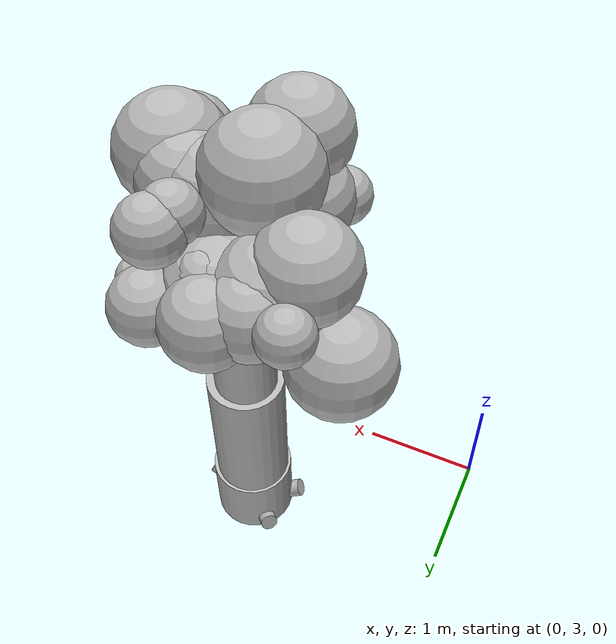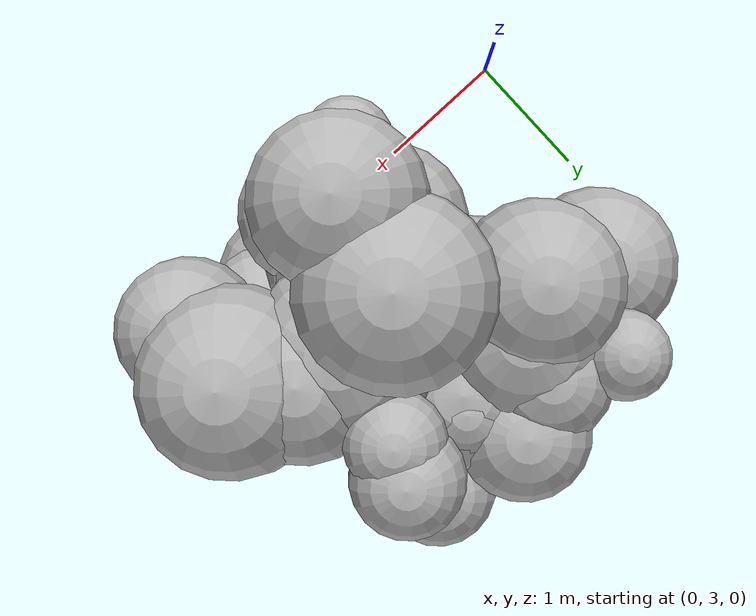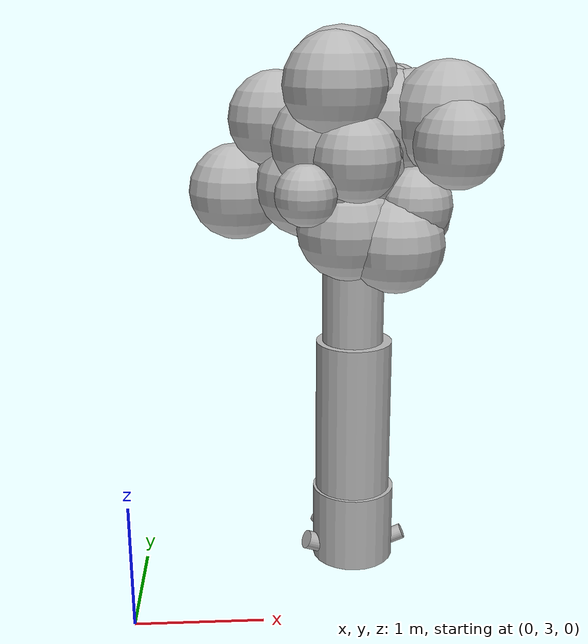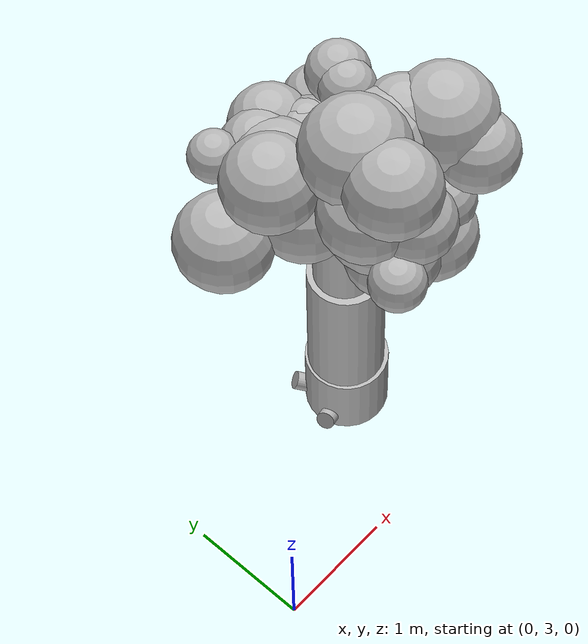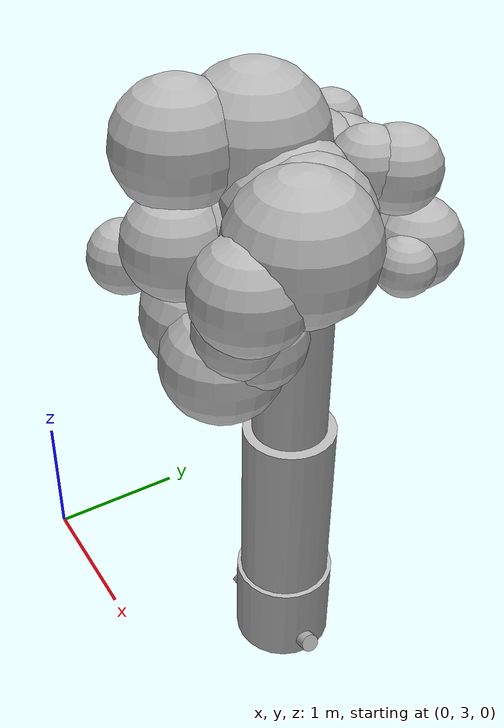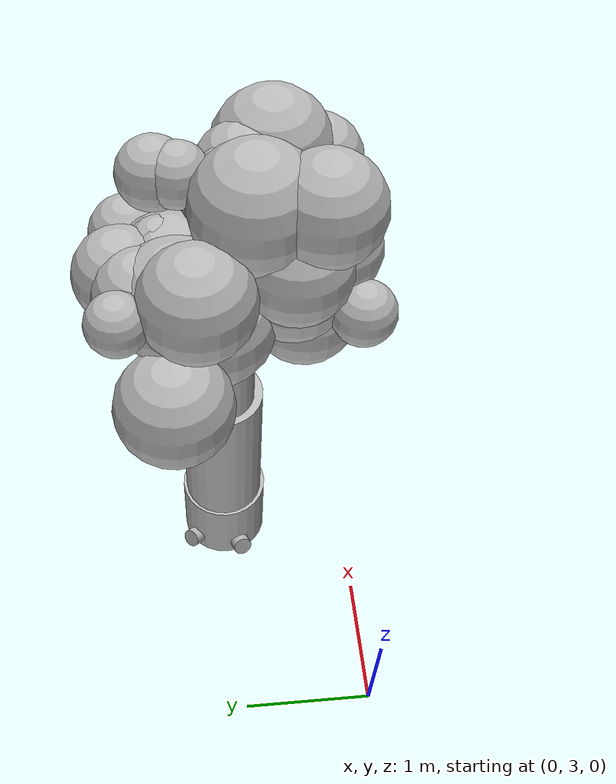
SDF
<sdf version="1.6">
 <world name="default">
  <model name="tree_2">
   <static>true</static>
   <pose>1.7920 4.0430 0 0 0 0</pose>
   <link name="trunk">
    <pose>0 0 1.5000 0 0 0</pose>
    <collision name="trunk_c">
     <geometry><cylinder><radius>0.3500</radius><length>3.0000</length></cylinder></geometry>
    </collision>
   </link>
   <link name="trunk_v0">
    <pose>-0.0010 0.0005 0.3100 0 0 0</pose>
    <visual name="trunk_v0_v">
     <geometry><cylinder><radius>0.3448</radius><length>0.6448</length></cylinder></geometry>
     <material>
      <script>
       <uri>model://bushfire/materials/scripts</uri>
       <uri>model://bushfire/materials/textures</uri>
       <name>Bushfire/CharBark</name>
      </script>
     </material>
    </visual>
   </link>
   <link name="trunk_v1">
    <pose>-0.0071 0.0036 1.2700 0 0 0</pose>
    <visual name="trunk_v1_v">
     <geometry><cylinder><radius>0.3150</radius><length>1.3520</length></cylinder></geometry>
     <material>
      <script>
       <uri>model://bushfire/materials/scripts</uri>
       <uri>model://bushfire/materials/textures</uri>
       <name>Bushfire/BarkSmooth</name>
      </script>
     </material>
    </visual>
   </link>
   <link name="trunk_v2">
    <pose>-0.0178 0.0092 2.4600 0 0 0</pose>
    <visual name="trunk_v2_v">
     <geometry><cylinder><radius>0.2520</radius><length>1.1232</length></cylinder></geometry>
     <material>
      <script>
       <uri>model://bushfire/materials/scripts</uri>
       <uri>model://bushfire/materials/textures</uri>
       <name>Bushfire/BarkSmooth</name>
      </script>
     </material>
    </visual>
   </link>
   <link name="root0">
    <pose>-0.1631 0.1760 0.09 0 1.150 2.318</pose>
    <visual name="root0_v">
     <geometry><cylinder><radius>0.0746</radius><length>0.4200</length></cylinder></geometry>
     <material>
      <script>
       <uri>model://bushfire/materials/scripts</uri>
       <uri>model://bushfire/materials/textures</uri>
       <name>Bushfire/CharBark</name>
      </script>
     </material>
    </visual>
   </link>
   <link name="root1">
    <pose>0.2394 -0.0163 0.09 0 1.150 6.215</pose>
    <visual name="root1_v">
     <geometry><cylinder><radius>0.0648</radius><length>0.4200</length></cylinder></geometry>
     <material>
      <script>
       <uri>model://bushfire/materials/scripts</uri>
       <uri>model://bushfire/materials/textures</uri>
       <name>Bushfire/CharBark</name>
      </script>
     </material>
    </visual>
   </link>
   <link name="root2">
    <pose>-0.2289 -0.0722 0.09 0 1.150 3.447</pose>
    <visual name="root2_v">
     <geometry><cylinder><radius>0.0774</radius><length>0.4200</length></cylinder></geometry>
     <material>
      <script>
       <uri>model://bushfire/materials/scripts</uri>
       <uri>model://bushfire/materials/textures</uri>
       <name>Bushfire/CharBark</name>
      </script>
     </material>
    </visual>
   </link>
   <link name="branch0">
    <pose>-0.3197 0.1943 2.6938 0 0.9815 2.5955</pose>
    <visual name="branch0_v">
     <geometry><cylinder><radius>0.0321</radius><length>0.9001</length></cylinder></geometry>
     <material>
      <script>
       <uri>model://bushfire/materials/scripts</uri>
       <uri>model://bushfire/materials/textures</uri>
       <name>Bushfire/BarkSmooth</name>
      </script>
     </material>
    </visual>
   </link>
   <link name="branch1">
    <pose>-0.1256 -0.2892 2.8835 0 0.8714 4.3028</pose>
    <visual name="branch1_v">
     <geometry><cylinder><radius>0.0494</radius><length>0.8241</length></cylinder></geometry>
     <material>
      <script>
       <uri>model://bushfire/materials/scripts</uri>
       <uri>model://bushfire/materials/textures</uri>
       <name>Bushfire/BarkSmooth</name>
      </script>
     </material>
    </visual>
   </link>
   <link name="branch2">
    <pose>0.2473 -0.2310 2.7229 0 0.9799 5.5319</pose>
    <visual name="branch2_v">
     <geometry><cylinder><radius>0.0376</radius><length>0.8148</length></cylinder></geometry>
     <material>
      <script>
       <uri>model://bushfire/materials/scripts</uri>
       <uri>model://bushfire/materials/textures</uri>
       <name>Bushfire/BarkSmooth</name>
      </script>
     </material>
    </visual>
   </link>
   <link name="branch3">
    <pose>0.0789 0.2578 2.9053 0 0.9493 7.5569</pose>
    <visual name="branch3_v">
     <geometry><cylinder><radius>0.0389</radius><length>0.6632</length></cylinder></geometry>
     <material>
      <script>
       <uri>model://bushfire/materials/scripts</uri>
       <uri>model://bushfire/materials/textures</uri>
       <name>Bushfire/BarkSmooth</name>
      </script>
     </material>
    </visual>
   </link>
   <link name="foliage0">
    <pose>-0.4290 0.3008 3.5321 0 0 0</pose>
    <visual name="foliage0_v">
     <geometry><sphere><radius>0.4205</radius></sphere></geometry>
     <material>
      <script>
       <uri>model://bushfire/materials/scripts</uri>
       <uri>model://bushfire/materials/textures</uri>
       <name>Bushfire/Foliage1</name>
      </script>
     </material>
    </visual>
   </link>
   <link name="foliage1">
    <pose>0.0285 -0.5417 3.4323 0 0 0</pose>
    <visual name="foliage1_v">
     <geometry><sphere><radius>0.2659</radius></sphere></geometry>
     <material>
      <script>
       <uri>model://bushfire/materials/scripts</uri>
       <uri>model://bushfire/materials/textures</uri>
       <name>Bushfire/Foliage2</name>
      </script>
     </material>
    </visual>
   </link>
   <link name="foliage2">
    <pose>0.3716 -0.6010 3.1950 0 0 0</pose>
    <visual name="foliage2_v">
     <geometry><sphere><radius>0.2785</radius></sphere></geometry>
     <material>
      <script>
       <uri>model://bushfire/materials/scripts</uri>
       <uri>model://bushfire/materials/textures</uri>
       <name>Bushfire/Foliage1</name>
      </script>
     </material>
    </visual>
   </link>
   <link name="foliage3">
    <pose>0.3328 0.5916 3.3721 0 0 0</pose>
    <visual name="foliage3_v">
     <geometry><sphere><radius>0.2792</radius></sphere></geometry>
     <material>
      <script>
       <uri>model://bushfire/materials/scripts</uri>
       <uri>model://bushfire/materials/textures</uri>
       <name>Bushfire/Foliage0</name>
      </script>
     </material>
    </visual>
   </link>
   <link name="foliage4">
    <pose>-0.6272 0.1872 3.7376 0 0 0</pose>
    <visual name="foliage4_v">
     <geometry><sphere><radius>0.3826</radius></sphere></geometry>
     <material>
      <script>
       <uri>model://bushfire/materials/scripts</uri>
       <uri>model://bushfire/materials/textures</uri>
       <name>Bushfire/Foliage1</name>
      </script>
     </material>
    </visual>
   </link>
   <link name="foliage5">
    <pose>-0.4474 -0.8946 3.3224 0 0 0</pose>
    <visual name="foliage5_v">
     <geometry><sphere><radius>0.2238</radius></sphere></geometry>
     <material>
      <script>
       <uri>model://bushfire/materials/scripts</uri>
       <uri>model://bushfire/materials/textures</uri>
       <name>Bushfire/Foliage0</name>
      </script>
     </material>
    </visual>
   </link>
   <link name="foliage6">
    <pose>0.6467 -0.7072 3.6452 0 0 0</pose>
    <visual name="foliage6_v">
     <geometry><sphere><radius>0.3265</radius></sphere></geometry>
     <material>
      <script>
       <uri>model://bushfire/materials/scripts</uri>
       <uri>model://bushfire/materials/textures</uri>
       <name>Bushfire/Foliage0</name>
      </script>
     </material>
    </visual>
   </link>
   <link name="foliage7">
    <pose>-0.0563 0.0506 2.9859 0 0 0</pose>
    <visual name="foliage7_v">
     <geometry><sphere><radius>0.2648</radius></sphere></geometry>
     <material>
      <script>
       <uri>model://bushfire/materials/scripts</uri>
       <uri>model://bushfire/materials/textures</uri>
       <name>Bushfire/Foliage2</name>
      </script>
     </material>
    </visual>
   </link>
   <link name="foliage8">
    <pose>-0.1241 0.2783 3.0375 0 0 0</pose>
    <visual name="foliage8_v">
     <geometry><sphere><radius>0.2468</radius></sphere></geometry>
     <material>
      <script>
       <uri>model://bushfire/materials/scripts</uri>
       <uri>model://bushfire/materials/textures</uri>
       <name>Bushfire/Foliage2</name>
      </script>
     </material>
    </visual>
   </link>
   <link name="foliage9">
    <pose>-0.1840 -0.4613 3.3617 0 0 0</pose>
    <visual name="foliage9_v">
     <geometry><sphere><radius>0.3954</radius></sphere></geometry>
     <material>
      <script>
       <uri>model://bushfire/materials/scripts</uri>
       <uri>model://bushfire/materials/textures</uri>
       <name>Bushfire/Foliage0</name>
      </script>
     </material>
    </visual>
   </link>
   <link name="foliage10">
    <pose>0.3985 -0.1983 3.7798 0 0 0</pose>
    <visual name="foliage10_v">
     <geometry><sphere><radius>0.3691</radius></sphere></geometry>
     <material>
      <script>
       <uri>model://bushfire/materials/scripts</uri>
       <uri>model://bushfire/materials/textures</uri>
       <name>Bushfire/Foliage1</name>
      </script>
     </material>
    </visual>
   </link>
   <link name="foliage11">
    <pose>0.4849 0.4026 3.3591 0 0 0</pose>
    <visual name="foliage11_v">
     <geometry><sphere><radius>0.1829</radius></sphere></geometry>
     <material>
      <script>
       <uri>model://bushfire/materials/scripts</uri>
       <uri>model://bushfire/materials/textures</uri>
       <name>Bushfire/Foliage0</name>
      </script>
     </material>
    </visual>
   </link>
   <link name="foliage12">
    <pose>-0.3872 0.5199 3.5566 0 0 0</pose>
    <visual name="foliage12_v">
     <geometry><sphere><radius>0.3204</radius></sphere></geometry>
     <material>
      <script>
       <uri>model://bushfire/materials/scripts</uri>
       <uri>model://bushfire/materials/textures</uri>
       <name>Bushfire/Foliage0</name>
      </script>
     </material>
    </visual>
   </link>
   <link name="foliage13">
    <pose>-0.2281 -0.6415 4.0592 0 0 0</pose>
    <visual name="foliage13_v">
     <geometry><sphere><radius>0.3779</radius></sphere></geometry>
     <material>
      <script>
       <uri>model://bushfire/materials/scripts</uri>
       <uri>model://bushfire/materials/textures</uri>
       <name>Bushfire/Foliage1</name>
      </script>
     </material>
    </visual>
   </link>
   <link name="foliage14">
    <pose>0.3319 -0.4990 3.1004 0 0 0</pose>
    <visual name="foliage14_v">
     <geometry><sphere><radius>0.3218</radius></sphere></geometry>
     <material>
      <script>
       <uri>model://bushfire/materials/scripts</uri>
       <uri>model://bushfire/materials/textures</uri>
       <name>Bushfire/Foliage0</name>
      </script>
     </material>
    </visual>
   </link>
   <link name="foliage15">
    <pose>0.2730 0.2456 3.9333 0 0 0</pose>
    <visual name="foliage15_v">
     <geometry><sphere><radius>0.2230</radius></sphere></geometry>
     <material>
      <script>
       <uri>model://bushfire/materials/scripts</uri>
       <uri>model://bushfire/materials/textures</uri>
       <name>Bushfire/Foliage0</name>
      </script>
     </material>
    </visual>
   </link>
   <link name="foliage16">
    <pose>-0.9527 0.3666 3.1352 0 0 0</pose>
    <visual name="foliage16_v">
     <geometry><sphere><radius>0.3936</radius></sphere></geometry>
     <material>
      <script>
       <uri>model://bushfire/materials/scripts</uri>
       <uri>model://bushfire/materials/textures</uri>
       <name>Bushfire/Foliage0</name>
      </script>
     </material>
    </visual>
   </link>
   <link name="foliage17">
    <pose>-0.3153 -0.4635 3.6392 0 0 0</pose>
    <visual name="foliage17_v">
     <geometry><sphere><radius>0.3716</radius></sphere></geometry>
     <material>
      <script>
       <uri>model://bushfire/materials/scripts</uri>
       <uri>model://bushfire/materials/textures</uri>
       <name>Bushfire/Foliage0</name>
      </script>
     </material>
    </visual>
   </link>
   <link name="foliage18">
    <pose>0.6196 -0.3944 3.8035 0 0 0</pose>
    <visual name="foliage18_v">
     <geometry><sphere><radius>0.4227</radius></sphere></geometry>
     <material>
      <script>
       <uri>model://bushfire/materials/scripts</uri>
       <uri>model://bushfire/materials/textures</uri>
       <name>Bushfire/Foliage2</name>
      </script>
     </material>
    </visual>
   </link>
   <link name="foliage19">
    <pose>0.3421 0.3991 3.8991 0 0 0</pose>
    <visual name="foliage19_v">
     <geometry><sphere><radius>0.2507</radius></sphere></geometry>
     <material>
      <script>
       <uri>model://bushfire/materials/scripts</uri>
       <uri>model://bushfire/materials/textures</uri>
       <name>Bushfire/Foliage1</name>
      </script>
     </material>
    </visual>
   </link>
   <link name="foliage20">
    <pose>-0.3889 0.0714 3.2273 0 0 0</pose>
    <visual name="foliage20_v">
     <geometry><sphere><radius>0.4100</radius></sphere></geometry>
     <material>
      <script>
       <uri>model://bushfire/materials/scripts</uri>
       <uri>model://bushfire/materials/textures</uri>
       <name>Bushfire/Foliage0</name>
      </script>
     </material>
    </visual>
   </link>
   <link name="foliage21">
    <pose>-0.0820 -0.7392 3.5555 0 0 0</pose>
    <visual name="foliage21_v">
     <geometry><sphere><radius>0.3214</radius></sphere></geometry>
     <material>
      <script>
       <uri>model://bushfire/materials/scripts</uri>
       <uri>model://bushfire/materials/textures</uri>
       <name>Bushfire/Foliage1</name>
      </script>
     </material>
    </visual>
   </link>
   <link name="foliage22">
    <pose>0.1969 -0.1762 3.7364 0 0 0</pose>
    <visual name="foliage22_v">
     <geometry><sphere><radius>0.4178</radius></sphere></geometry>
     <material>
      <script>
       <uri>model://bushfire/materials/scripts</uri>
       <uri>model://bushfire/materials/textures</uri>
       <name>Bushfire/Foliage1</name>
      </script>
     </material>
    </visual>
   </link>
   <link name="foliage23">
    <pose>-0.0591 0.3164 3.3991 0 0 0</pose>
    <visual name="foliage23_v">
     <geometry><sphere><radius>0.4132</radius></sphere></geometry>
     <material>
      <script>
       <uri>model://bushfire/materials/scripts</uri>
       <uri>model://bushfire/materials/textures</uri>
       <name>Bushfire/Foliage1</name>
      </script>
     </material>
    </visual>
   </link>
   <link name="foliage24">
    <pose>-0.0142 0.3881 3.5900 0 0 0</pose>
    <visual name="foliage24_v">
     <geometry><sphere><radius>0.2165</radius></sphere></geometry>
     <material>
      <script>
       <uri>model://bushfire/materials/scripts</uri>
       <uri>model://bushfire/materials/textures</uri>
       <name>Bushfire/Foliage2</name>
      </script>
     </material>
    </visual>
   </link>
   <link name="foliage25">
    <pose>-0.1172 -0.5617 3.0102 0 0 0</pose>
    <visual name="foliage25_v">
     <geometry><sphere><radius>0.3856</radius></sphere></geometry>
     <material>
      <script>
       <uri>model://bushfire/materials/scripts</uri>
       <uri>model://bushfire/materials/textures</uri>
       <name>Bushfire/Foliage0</name>
      </script>
     </material>
    </visual>
   </link>
   <link name="foliage26">
    <pose>0.2281 -0.6347 2.9129 0 0 0</pose>
    <visual name="foliage26_v">
     <geometry><sphere><radius>0.3714</radius></sphere></geometry>
     <material>
      <script>
       <uri>model://bushfire/materials/scripts</uri>
       <uri>model://bushfire/materials/textures</uri>
       <name>Bushfire/Foliage1</name>
      </script>
     </material>
    </visual>
   </link>
   <link name="foliage27">
    <pose>-0.1376 0.6462 3.4947 0 0 0</pose>
    <visual name="foliage27_v">
     <geometry><sphere><radius>0.3256</radius></sphere></geometry>
     <material>
      <script>
       <uri>model://bushfire/materials/scripts</uri>
       <uri>model://bushfire/materials/textures</uri>
       <name>Bushfire/Foliage0</name>
      </script>
     </material>
    </visual>
   </link>
   <link name="foliage28">
    <pose>-0.7006 0.6749 3.6798 0 0 0</pose>
    <visual name="foliage28_v">
     <geometry><sphere><radius>0.2059</radius></sphere></geometry>
     <material>
      <script>
       <uri>model://bushfire/materials/scripts</uri>
       <uri>model://bushfire/materials/textures</uri>
       <name>Bushfire/Foliage0</name>
      </script>
     </material>
    </visual>
   </link>
   <link name="foliage29">
    <pose>-0.1506 -0.2147 4.0305 0 0 0</pose>
    <visual name="foliage29_v">
     <geometry><sphere><radius>0.4322</radius></sphere></geometry>
     <material>
      <script>
       <uri>model://bushfire/materials/scripts</uri>
       <uri>model://bushfire/materials/textures</uri>
       <name>Bushfire/Foliage1</name>
      </script>
     </material>
    </visual>
   </link>
   <link name="foliage30">
    <pose>0.0075 -0.4084 3.5679 0 0 0</pose>
    <visual name="foliage30_v">
     <geometry><sphere><radius>0.3054</radius></sphere></geometry>
     <material>
      <script>
       <uri>model://bushfire/materials/scripts</uri>
       <uri>model://bushfire/materials/textures</uri>
       <name>Bushfire/Foliage1</name>
      </script>
     </material>
    </visual>
   </link>
  </model>
 </world>
</sdf>
